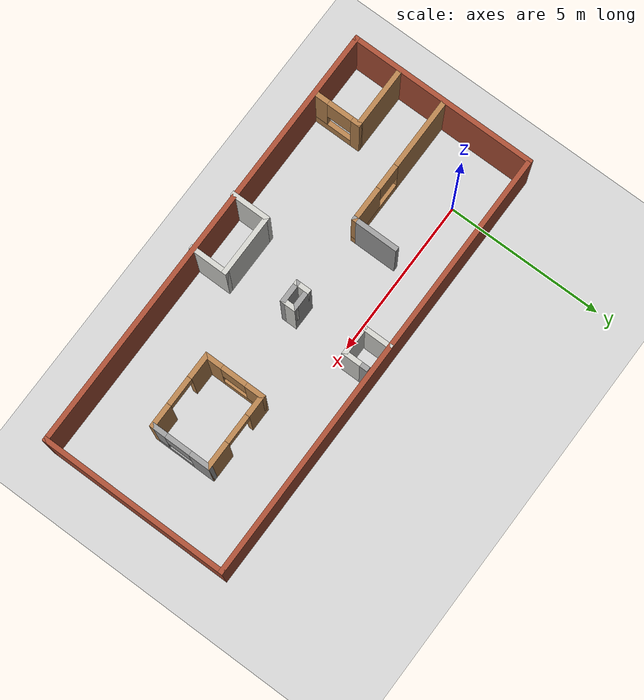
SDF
<sdf version="1.7">
 <world name="default">
  <light name="sun" type="directional">
   <pose>0 0 10 0 -0 0</pose>
   <diffuse>0.8 0.8 0.8 1</diffuse>
   <specular>0.2 0.2 0.2 1</specular>
   <attenuation>
    <range>1000</range>
    <constant>0.9</constant>
    <linear>0.01</linear>
    <quadratic>0.001</quadratic>
   </attenuation>
   <direction>-0.5 0.1 -0.9</direction>
   <spot><inner_angle>0</inner_angle><outer_angle>0</outer_angle><falloff>0</falloff></spot>
  </light>
  <model name="ground_plane">
   <static>1</static>
   <link name="link">
    <collision name="collision">
     <geometry><plane><normal>0 0 1</normal><size>100 100</size></plane></geometry>
     <surface>
      <contact><collide_bitmask>65535</collide_bitmask></contact>
      <friction><ode><mu>100</mu><mu2>50</mu2></ode></friction>
     </surface>
    </collision>
    <visual name="visual">
     <cast_shadows>0</cast_shadows>
     <geometry><plane><normal>0 0 1</normal><size>100 100</size></plane></geometry>
     <material>
      <script><uri>file://media/materials/scripts/gazebo.material</uri><name>Gazebo/Grey</name></script>
     </material>
    </visual>
   </link>
  </model>
  <gravity>0 0 -9.8</gravity>
  <magnetic_field>6e-06 2.3e-05 -4.2e-05</magnetic_field>
  <atmosphere type="adiabatic"/>
  <physics type="ode">
   <max_step_size>0.001</max_step_size>
   <real_time_factor>1</real_time_factor>
   <real_time_update_rate>1000</real_time_update_rate>
  </physics>
  <scene><ambient>0.4 0.4 0.4 1</ambient><background>0.7 0.7 0.7 1</background><shadows>1</shadows></scene>
  <audio><device>default</device></audio>
  <spherical_coordinates>
   <surface_model>EARTH_WGS84</surface_model>
   <latitude_deg>0</latitude_deg>
   <longitude_deg>0</longitude_deg>
   <elevation>0</elevation>
   <heading_deg>0</heading_deg>
  </spherical_coordinates>
  <model name="MAIN">
   <pose>5.15719 -1.52528 0 0 -0 0</pose>
   <link name="Wall_0">
    <collision name="Wall_0_Collision">
     <geometry><box><size>14 0.15 2.5</size></box></geometry>
     <pose>0 0 1.25 0 -0 0</pose>
    </collision>
    <visual name="Wall_0_Visual">
     <pose>0 0 1.25 0 -0 0</pose>
     <geometry><box><size>14 0.15 2.5</size></box></geometry>
     <material>
      <script><uri>file://media/materials/scripts/gazebo.material</uri><name>Gazebo/Bricks</name></script>
      <ambient>1 1 1 1</ambient>
     </material>
     <meta><layer>0</layer></meta>
    </visual>
    <pose>0 2.68666 0 0 -0 0</pose>
   </link>
   <link name="Wall_1">
    <collision name="Wall_1_Collision">
     <geometry><box><size>6 0.15 2.5</size></box></geometry>
     <pose>0 0 1.25 0 -0 0</pose>
    </collision>
    <visual name="Wall_1_Visual">
     <pose>0 0 1.25 0 -0 0</pose>
     <geometry><box><size>6 0.15 2.5</size></box></geometry>
     <material>
      <script><uri>file://media/materials/scripts/gazebo.material</uri><name>Gazebo/Bricks</name></script>
      <ambient>1 1 1 1</ambient>
     </material>
     <meta><layer>0</layer></meta>
    </visual>
    <pose>6.925 -0.238344 0 0 -0 -1.5708</pose>
   </link>
   <link name="Wall_10">
    <pose>4.93047 -0.185064 0 0 -0 -1.5708</pose>
    <visual name="Wall_10_Visual_0">
     <pose>-0.660611 0 1.25 0 -0 0</pose>
     <geometry><box><size>0.678778 0.15 2.5</size></box></geometry>
     <material>
      <script><uri>file://media/materials/scripts/gazebo.material</uri><name>Gazebo/Grey</name></script>
      <ambient>1 1 1 1</ambient>
     </material>
     <meta><layer>0</layer></meta>
    </visual>
    <collision name="Wall_10_Collision_0">
     <geometry><box><size>0.678778 0.15 2.5</size></box></geometry>
     <pose>-0.660611 0 1.25 0 -0 0</pose>
    </collision>
    <visual name="Wall_10_Visual_1">
     <pose>0.339389 0 0.25 0 -0 0</pose>
     <geometry><box><size>1.32122 0.15 0.5</size></box></geometry>
     <material>
      <script><uri>file://media/materials/scripts/gazebo.material</uri><name>Gazebo/Grey</name></script>
      <ambient>1 1 1 1</ambient>
     </material>
     <meta><layer>0</layer></meta>
    </visual>
    <collision name="Wall_10_Collision_1">
     <geometry><box><size>1.32122 0.15 0.5</size></box></geometry>
     <pose>0.339389 0 0.25 0 -0 0</pose>
    </collision>
    <visual name="Wall_10_Visual_2">
     <pose>0.739389 0 1.5 0 -0 0</pose>
     <geometry><box><size>0.521222 0.15 2</size></box></geometry>
     <material>
      <script><uri>file://media/materials/scripts/gazebo.material</uri><name>Gazebo/Grey</name></script>
      <ambient>1 1 1 1</ambient>
     </material>
     <meta><layer>0</layer></meta>
    </visual>
    <collision name="Wall_10_Collision_2">
     <geometry><box><size>0.521222 0.15 2</size></box></geometry>
     <pose>0.739389 0 1.5 0 -0 0</pose>
    </collision>
    <visual name="Wall_10_Visual_3">
     <pose>0.078778 0 1.9 0 -0 0</pose>
     <geometry><box><size>0.8 0.15 1.2</size></box></geometry>
     <material>
      <script><uri>file://media/materials/scripts/gazebo.material</uri><name>Gazebo/Grey</name></script>
      <ambient>1 1 1 1</ambient>
     </material>
     <meta><layer>0</layer></meta>
    </visual>
    <collision name="Wall_10_Collision_3">
     <geometry><box><size>0.8 0.15 1.2</size></box></geometry>
     <pose>0.078778 0 1.9 0 -0 0</pose>
    </collision>
   </link>
   <link name="Wall_11">
    <pose>3.75547 -1.11006 0 0 -0 3.14159</pose>
    <visual name="Wall_11_Visual_0">
     <pose>-0.863246 0 1.25 0 -0 0</pose>
     <geometry><box><size>0.773509 0.15 2.5</size></box></geometry>
     <material>
      <script><uri>file://media/materials/scripts/gazebo.material</uri><name>Gazebo/Wood</name></script>
      <ambient>1 1 1 1</ambient>
     </material>
     <meta><layer>0</layer></meta>
    </visual>
    <collision name="Wall_11_Collision_0">
     <geometry><box><size>0.773509 0.15 2.5</size></box></geometry>
     <pose>-0.863246 0 1.25 0 -0 0</pose>
    </collision>
    <visual name="Wall_11_Visual_1">
     <pose>0.836754 0 1.25 0 -0 0</pose>
     <geometry><box><size>0.826491 0.15 2.5</size></box></geometry>
     <material>
      <script><uri>file://media/materials/scripts/gazebo.material</uri><name>Gazebo/Wood</name></script>
      <ambient>1 1 1 1</ambient>
     </material>
     <meta><layer>0</layer></meta>
    </visual>
    <collision name="Wall_11_Collision_1">
     <geometry><box><size>0.826491 0.15 2.5</size></box></geometry>
     <pose>0.836754 0 1.25 0 -0 0</pose>
    </collision>
    <visual name="Wall_11_Visual_2">
     <pose>-0.026491 0 2.25 0 -0 0</pose>
     <geometry><box><size>0.9 0.15 0.5</size></box></geometry>
     <material>
      <script><uri>file://media/materials/scripts/gazebo.material</uri><name>Gazebo/Wood</name></script>
      <ambient>1 1 1 1</ambient>
     </material>
     <meta><layer>0</layer></meta>
    </visual>
    <collision name="Wall_11_Collision_2">
     <geometry><box><size>0.9 0.15 0.5</size></box></geometry>
     <pose>-0.026491 0 2.25 0 -0 0</pose>
    </collision>
   </link>
   <link name="Wall_12">
    <pose>2.58047 -0.185064 0 0 -0 1.5708</pose>
    <visual name="Wall_12_Visual_0">
     <pose>-0.701367 0 1.25 0 -0 0</pose>
     <geometry><box><size>0.597266 0.15 2.5</size></box></geometry>
     <material>
      <script><uri>file://media/materials/scripts/gazebo.material</uri><name>Gazebo/Wood</name></script>
      <ambient>1 1 1 1</ambient>
     </material>
     <meta><layer>0</layer></meta>
    </visual>
    <collision name="Wall_12_Collision_0">
     <geometry><box><size>0.597266 0.15 2.5</size></box></geometry>
     <pose>-0.701367 0 1.25 0 -0 0</pose>
    </collision>
    <visual name="Wall_12_Visual_1">
     <pose>0.298633 0 0.25 0 -0 0</pose>
     <geometry><box><size>1.40273 0.15 0.5</size></box></geometry>
     <material>
      <script><uri>file://media/materials/scripts/gazebo.material</uri><name>Gazebo/Wood</name></script>
      <ambient>1 1 1 1</ambient>
     </material>
     <meta><layer>0</layer></meta>
    </visual>
    <collision name="Wall_12_Collision_1">
     <geometry><box><size>1.40273 0.15 0.5</size></box></geometry>
     <pose>0.298633 0 0.25 0 -0 0</pose>
    </collision>
    <visual name="Wall_12_Visual_2">
     <pose>0.698633 0 1.5 0 -0 0</pose>
     <geometry><box><size>0.602734 0.15 2</size></box></geometry>
     <material>
      <script><uri>file://media/materials/scripts/gazebo.material</uri><name>Gazebo/Wood</name></script>
      <ambient>1 1 1 1</ambient>
     </material>
     <meta><layer>0</layer></meta>
    </visual>
    <collision name="Wall_12_Collision_2">
     <geometry><box><size>0.602734 0.15 2</size></box></geometry>
     <pose>0.698633 0 1.5 0 -0 0</pose>
    </collision>
    <visual name="Wall_12_Visual_3">
     <pose>-0.002734 0 1.9 0 -0 0</pose>
     <geometry><box><size>0.8 0.15 1.2</size></box></geometry>
     <material>
      <script><uri>file://media/materials/scripts/gazebo.material</uri><name>Gazebo/Wood</name></script>
      <ambient>1 1 1 1</ambient>
     </material>
     <meta><layer>0</layer></meta>
    </visual>
    <collision name="Wall_12_Collision_3">
     <geometry><box><size>0.8 0.15 1.2</size></box></geometry>
     <pose>-0.002734 0 1.9 0 -0 0</pose>
    </collision>
   </link>
   <link name="Wall_14">
    <collision name="Wall_14_Collision">
     <geometry><box><size>2 0.15 2.5</size></box></geometry>
     <pose>0 0 1.25 0 -0 0</pose>
    </collision>
    <visual name="Wall_14_Visual">
     <pose>0 0 1.25 0 -0 0</pose>
     <geometry><box><size>2 0.15 2.5</size></box></geometry>
     <material>
      <script><uri>file://media/materials/scripts/gazebo.material</uri><name>Gazebo/Wood</name></script>
      <ambient>1 1 1 1</ambient>
     </material>
     <meta><layer>0</layer></meta>
    </visual>
    <pose>-5.92396 -1.66305 0 0 -0 0</pose>
   </link>
   <link name="Wall_15">
    <pose>-4.99896 -2.33805 0 0 -0 -1.5708</pose>
    <visual name="Wall_15_Visual_0">
     <pose>-0.600721 0 1.25 0 -0 0</pose>
     <geometry><box><size>0.298559 0.15 2.5</size></box></geometry>
     <material>
      <script><uri>file://media/materials/scripts/gazebo.material</uri><name>Gazebo/Wood</name></script>
      <ambient>1 1 1 1</ambient>
     </material>
     <meta><layer>0</layer></meta>
    </visual>
    <collision name="Wall_15_Collision_0">
     <geometry><box><size>0.298559 0.15 2.5</size></box></geometry>
     <pose>-0.600721 0 1.25 0 -0 0</pose>
    </collision>
    <visual name="Wall_15_Visual_1">
     <pose>0.149279 0 0.25 0 -0 0</pose>
     <geometry><box><size>1.20144 0.15 0.5</size></box></geometry>
     <material>
      <script><uri>file://media/materials/scripts/gazebo.material</uri><name>Gazebo/Wood</name></script>
      <ambient>1 1 1 1</ambient>
     </material>
     <meta><layer>0</layer></meta>
    </visual>
    <collision name="Wall_15_Collision_1">
     <geometry><box><size>1.20144 0.15 0.5</size></box></geometry>
     <pose>0.149279 0 0.25 0 -0 0</pose>
    </collision>
    <visual name="Wall_15_Visual_2">
     <pose>0.549279 0 1.5 0 -0 0</pose>
     <geometry><box><size>0.401441 0.15 2</size></box></geometry>
     <material>
      <script><uri>file://media/materials/scripts/gazebo.material</uri><name>Gazebo/Wood</name></script>
      <ambient>1 1 1 1</ambient>
     </material>
     <meta><layer>0</layer></meta>
    </visual>
    <collision name="Wall_15_Collision_2">
     <geometry><box><size>0.401441 0.15 2</size></box></geometry>
     <pose>0.549279 0 1.5 0 -0 0</pose>
    </collision>
    <visual name="Wall_15_Visual_3">
     <pose>-0.051441 0 1.9 0 -0 0</pose>
     <geometry><box><size>0.8 0.15 1.2</size></box></geometry>
     <material>
      <script><uri>file://media/materials/scripts/gazebo.material</uri><name>Gazebo/Wood</name></script>
      <ambient>1 1 1 1</ambient>
     </material>
     <meta><layer>0</layer></meta>
    </visual>
    <collision name="Wall_15_Collision_3">
     <geometry><box><size>0.8 0.15 1.2</size></box></geometry>
     <pose>-0.051441 0 1.9 0 -0 0</pose>
    </collision>
   </link>
   <link name="Wall_17">
    <collision name="Wall_17_Collision">
     <geometry><box><size>0.75 0.15 2.5</size></box></geometry>
     <pose>0 0 1.25 0 -0 0</pose>
    </collision>
    <visual name="Wall_17_Visual">
     <pose>0 0 1.25 0 -0 0</pose>
     <geometry><box><size>0.75 0.15 2.5</size></box></geometry>
     <material>
      <script><uri>file://media/materials/scripts/gazebo.material</uri><name>Gazebo/Grey</name></script>
      <ambient>1 1 1 1</ambient>
     </material>
     <meta><layer>0</layer></meta>
    </visual>
    <pose>-0.146072 -0.005293 0 0 -0 0</pose>
   </link>
   <link name="Wall_18">
    <collision name="Wall_18_Collision">
     <geometry><box><size>0.5 0.15 2.5</size></box></geometry>
     <pose>0 0 1.25 0 -0 0</pose>
    </collision>
    <visual name="Wall_18_Visual">
     <pose>0 0 1.25 0 -0 0</pose>
     <geometry><box><size>0.5 0.15 2.5</size></box></geometry>
     <material>
      <script><uri>file://media/materials/scripts/gazebo.material</uri><name>Gazebo/CeilingTiled</name></script>
      <ambient>1 1 1 1</ambient>
     </material>
     <meta><layer>0</layer></meta>
    </visual>
    <pose>0.153928 -0.180293 0 0 -0 -1.5708</pose>
   </link>
   <link name="Wall_19">
    <collision name="Wall_19_Collision">
     <geometry><box><size>0.75 0.15 2.5</size></box></geometry>
     <pose>0 0 1.25 0 -0 0</pose>
    </collision>
    <visual name="Wall_19_Visual">
     <pose>0 0 1.25 0 -0 0</pose>
     <geometry><box><size>0.75 0.15 2.5</size></box></geometry>
     <material>
      <script><uri>file://media/materials/scripts/gazebo.material</uri><name>Gazebo/Grey</name></script>
      <ambient>1 1 1 1</ambient>
     </material>
     <meta><layer>0</layer></meta>
    </visual>
    <pose>-0.146072 -0.355293 0 0 -0 3.14159</pose>
   </link>
   <link name="Wall_2">
    <collision name="Wall_2_Collision">
     <geometry><box><size>14 0.15 2.5</size></box></geometry>
     <pose>0 0 1.25 0 -0 0</pose>
    </collision>
    <visual name="Wall_2_Visual">
     <pose>0 0 1.25 0 -0 0</pose>
     <geometry><box><size>14 0.15 2.5</size></box></geometry>
     <material>
      <script><uri>file://media/materials/scripts/gazebo.material</uri><name>Gazebo/Bricks</name></script>
      <ambient>1 1 1 1</ambient>
     </material>
     <meta><layer>0</layer></meta>
    </visual>
    <pose>0 -3.16335 0 0 -0 3.14159</pose>
   </link>
   <link name="Wall_20">
    <collision name="Wall_20_Collision">
     <geometry><box><size>0.5 0.15 2.5</size></box></geometry>
     <pose>0 0 1.25 0 -0 0</pose>
    </collision>
    <visual name="Wall_20_Visual">
     <pose>0 0 1.25 0 -0 0</pose>
     <geometry><box><size>0.5 0.15 2.5</size></box></geometry>
     <material>
      <script><uri>file://media/materials/scripts/gazebo.material</uri><name>Gazebo/CeilingTiled</name></script>
      <ambient>1 1 1 1</ambient>
     </material>
     <meta><layer>0</layer></meta>
    </visual>
    <pose>-0.446072 -0.180293 0 0 -0 1.5708</pose>
   </link>
   <link name="Wall_22">
    <collision name="Wall_22_Collision">
     <geometry><box><size>1.25 0.15 2.5</size></box></geometry>
     <pose>0 0 1.25 0 -0 0</pose>
    </collision>
    <visual name="Wall_22_Visual">
     <pose>0 0 1.25 0 -0 0</pose>
     <geometry><box><size>1.25 0.15 2.5</size></box></geometry>
     <material>
      <script><uri>file://media/materials/scripts/gazebo.material</uri><name>Gazebo/CeilingTiled</name></script>
      <ambient>1 1 1 1</ambient>
     </material>
     <meta><layer>0</layer></meta>
    </visual>
    <pose>-1.38902 -2.64913 0 0 -0 1.5708</pose>
   </link>
   <link name="Wall_23">
    <collision name="Wall_23_Collision">
     <geometry><box><size>2 0.15 2.5</size></box></geometry>
     <pose>0 0 1.25 0 -0 0</pose>
    </collision>
    <visual name="Wall_23_Visual">
     <pose>0 0 1.25 0 -0 0</pose>
     <geometry><box><size>2 0.15 2.5</size></box></geometry>
     <material>
      <script><uri>file://media/materials/scripts/gazebo.material</uri><name>Gazebo/CeilingTiled</name></script>
      <ambient>1 1 1 1</ambient>
     </material>
     <meta><layer>0</layer></meta>
    </visual>
    <pose>-0.464015 -2.09913 0 0 -0 0</pose>
   </link>
   <link name="Wall_24">
    <collision name="Wall_24_Collision">
     <geometry><box><size>1.25 0.15 2.5</size></box></geometry>
     <pose>0 0 1.25 0 -0 0</pose>
    </collision>
    <visual name="Wall_24_Visual">
     <pose>0 0 1.25 0 -0 0</pose>
     <geometry><box><size>1.25 0.15 2.5</size></box></geometry>
     <material>
      <script><uri>file://media/materials/scripts/gazebo.material</uri><name>Gazebo/CeilingTiled</name></script>
      <ambient>1 1 1 1</ambient>
     </material>
     <meta><layer>0</layer></meta>
    </visual>
    <pose>0.460985 -2.64913 0 0 -0 -1.5708</pose>
   </link>
   <link name="Wall_29">
    <collision name="Wall_29_Collision">
     <geometry><box><size>1 0.15 2.5</size></box></geometry>
     <pose>0 0 1.25 0 -0 0</pose>
    </collision>
    <visual name="Wall_29_Visual">
     <pose>0 0 1.25 0 -0 0</pose>
     <geometry><box><size>1 0.15 2.5</size></box></geometry>
     <material>
      <script><uri>file://media/materials/scripts/gazebo.material</uri><name>Gazebo/CeilingTiled</name></script>
      <ambient>1 1 1 1</ambient>
     </material>
     <meta><layer>0</layer></meta>
    </visual>
    <pose>-0.537325 2.24645 0 0 -0 -1.5708</pose>
   </link>
   <link name="Wall_3">
    <collision name="Wall_3_Collision">
     <geometry><box><size>6 0.15 2.5</size></box></geometry>
     <pose>0 0 1.25 0 -0 0</pose>
    </collision>
    <visual name="Wall_3_Visual">
     <pose>0 0 1.25 0 -0 0</pose>
     <geometry><box><size>6 0.15 2.5</size></box></geometry>
     <material>
      <script><uri>file://media/materials/scripts/gazebo.material</uri><name>Gazebo/Bricks</name></script>
      <ambient>1 1 1 1</ambient>
     </material>
     <meta><layer>0</layer></meta>
    </visual>
    <pose>-6.925 -0.238344 0 0 -0 1.5708</pose>
   </link>
   <link name="Wall_30">
    <collision name="Wall_30_Collision">
     <geometry><box><size>1 0.15 2.5</size></box></geometry>
     <pose>0 0 1.25 0 -0 0</pose>
    </collision>
    <visual name="Wall_30_Visual">
     <pose>0 0 1.25 0 -0 0</pose>
     <geometry><box><size>1 0.15 2.5</size></box></geometry>
     <material>
      <script><uri>file://media/materials/scripts/gazebo.material</uri><name>Gazebo/CeilingTiled</name></script>
      <ambient>1 1 1 1</ambient>
     </material>
     <meta><layer>0</layer></meta>
    </visual>
    <pose>-0.112325 1.82145 0 0 -0 0</pose>
   </link>
   <link name="Wall_31">
    <collision name="Wall_31_Collision">
     <geometry><box><size>0.75 0.15 2.5</size></box></geometry>
     <pose>0 0 1.25 0 -0 0</pose>
    </collision>
    <visual name="Wall_31_Visual">
     <pose>0 0 1.25 0 -0 0</pose>
     <geometry><box><size>0.75 0.15 2.5</size></box></geometry>
     <material>
      <script><uri>file://media/materials/scripts/gazebo.material</uri><name>Gazebo/CeilingTiled</name></script>
      <ambient>1 1 1 1</ambient>
     </material>
     <meta><layer>0</layer></meta>
    </visual>
    <pose>0.312675 2.12145 0 0 -0 1.5708</pose>
   </link>
   <link name="Wall_32">
    <collision name="Wall_32_Collision">
     <geometry><box><size>0.25 0.15 2.5</size></box></geometry>
     <pose>0 0 1.25 0 -0 0</pose>
    </collision>
    <visual name="Wall_32_Visual">
     <pose>0 0 1.25 0 -0 0</pose>
     <geometry><box><size>0.25 0.15 2.5</size></box></geometry>
     <material>
      <script><uri>file://media/materials/scripts/gazebo.material</uri><name>Gazebo/Grey</name></script>
      <ambient>1 1 1 1</ambient>
     </material>
     <meta><layer>0</layer></meta>
    </visual>
    <pose>0.312675 2.47145 0 0 -0 1.5708</pose>
   </link>
   <link name="Wall_5">
    <pose>-4.84458 -0.157381 0 0 -0 0</pose>
    <visual name="Wall_5_Visual_0">
     <pose>-0.971943 0 1.25 0 -0 0</pose>
     <geometry><box><size>2.30611 0.15 2.5</size></box></geometry>
     <material>
      <script><uri>file://media/materials/scripts/gazebo.material</uri><name>Gazebo/Wood</name></script>
      <ambient>1 1 1 1</ambient>
     </material>
     <meta><layer>0</layer></meta>
    </visual>
    <collision name="Wall_5_Collision_0">
     <geometry><box><size>2.30611 0.15 2.5</size></box></geometry>
     <pose>-0.971943 0 1.25 0 -0 0</pose>
    </collision>
    <visual name="Wall_5_Visual_1">
     <pose>1.15306 0 0.25 0 -0 0</pose>
     <geometry><box><size>1.94389 0.15 0.5</size></box></geometry>
     <material>
      <script><uri>file://media/materials/scripts/gazebo.material</uri><name>Gazebo/Wood</name></script>
      <ambient>1 1 1 1</ambient>
     </material>
     <meta><layer>0</layer></meta>
    </visual>
    <collision name="Wall_5_Collision_1">
     <geometry><box><size>1.94389 0.15 0.5</size></box></geometry>
     <pose>1.15306 0 0.25 0 -0 0</pose>
    </collision>
    <visual name="Wall_5_Visual_2">
     <pose>1.55306 0 1.5 0 -0 0</pose>
     <geometry><box><size>1.14389 0.15 2</size></box></geometry>
     <material>
      <script><uri>file://media/materials/scripts/gazebo.material</uri><name>Gazebo/Wood</name></script>
      <ambient>1 1 1 1</ambient>
     </material>
     <meta><layer>0</layer></meta>
    </visual>
    <collision name="Wall_5_Collision_2">
     <geometry><box><size>1.14389 0.15 2</size></box></geometry>
     <pose>1.55306 0 1.5 0 -0 0</pose>
    </collision>
    <visual name="Wall_5_Visual_3">
     <pose>0.581114 0 1.9 0 -0 0</pose>
     <geometry><box><size>0.8 0.15 1.2</size></box></geometry>
     <material>
      <script><uri>file://media/materials/scripts/gazebo.material</uri><name>Gazebo/Wood</name></script>
      <ambient>1 1 1 1</ambient>
     </material>
     <meta><layer>0</layer></meta>
    </visual>
    <collision name="Wall_5_Collision_3">
     <geometry><box><size>0.8 0.15 1.2</size></box></geometry>
     <pose>0.581114 0 1.9 0 -0 0</pose>
    </collision>
   </link>
   <link name="Wall_6">
    <collision name="Wall_6_Collision">
     <geometry><box><size>1.5 0.15 2.5</size></box></geometry>
     <pose>0 0 1.25 0 -0 0</pose>
    </collision>
    <visual name="Wall_6_Visual">
     <pose>0 0 1.25 0 -0 0</pose>
     <geometry><box><size>1.5 0.15 2.5</size></box></geometry>
     <material>
      <script><uri>file://media/materials/scripts/gazebo.material</uri><name>Gazebo/Grey</name></script>
      <ambient>1 1 1 1</ambient>
     </material>
     <meta><layer>0</layer></meta>
    </visual>
    <pose>-2.79458 0.517619 0 0 -0 1.5708</pose>
   </link>
   <link name="Wall_9">
    <pose>3.75547 0.739936 0 0 -0 0</pose>
    <visual name="Wall_9_Visual_0">
     <pose>-0.889985 0 1.25 0 -0 0</pose>
     <geometry><box><size>0.72003 0.15 2.5</size></box></geometry>
     <material>
      <script><uri>file://media/materials/scripts/gazebo.material</uri><name>Gazebo/Wood</name></script>
      <ambient>1 1 1 1</ambient>
     </material>
     <meta><layer>0</layer></meta>
    </visual>
    <collision name="Wall_9_Collision_0">
     <geometry><box><size>0.72003 0.15 2.5</size></box></geometry>
     <pose>-0.889985 0 1.25 0 -0 0</pose>
    </collision>
    <visual name="Wall_9_Visual_1">
     <pose>0.810015 0 1.25 0 -0 0</pose>
     <geometry><box><size>0.87997 0.15 2.5</size></box></geometry>
     <material>
      <script><uri>file://media/materials/scripts/gazebo.material</uri><name>Gazebo/Wood</name></script>
      <ambient>1 1 1 1</ambient>
     </material>
     <meta><layer>0</layer></meta>
    </visual>
    <collision name="Wall_9_Collision_1">
     <geometry><box><size>0.87997 0.15 2.5</size></box></geometry>
     <pose>0.810015 0 1.25 0 -0 0</pose>
    </collision>
    <visual name="Wall_9_Visual_2">
     <pose>-0.07997 0 2.25 0 -0 0</pose>
     <geometry><box><size>0.9 0.15 0.5</size></box></geometry>
     <material>
      <script><uri>file://media/materials/scripts/gazebo.material</uri><name>Gazebo/Wood</name></script>
      <ambient>1 1 1 1</ambient>
     </material>
     <meta><layer>0</layer></meta>
    </visual>
    <collision name="Wall_9_Collision_2">
     <geometry><box><size>0.9 0.15 0.5</size></box></geometry>
     <pose>-0.07997 0 2.25 0 -0 0</pose>
    </collision>
   </link>
   <static>1</static>
  </model>
 </world>
</sdf>
